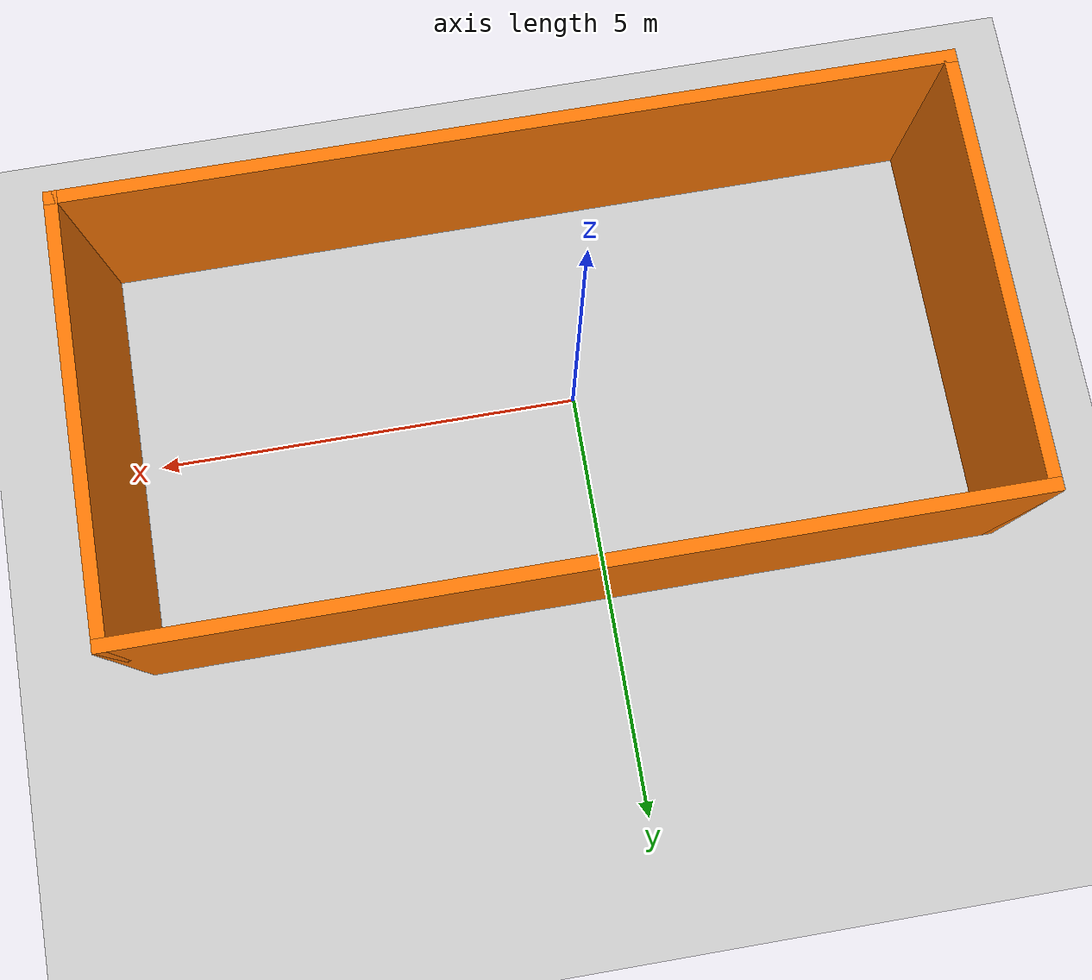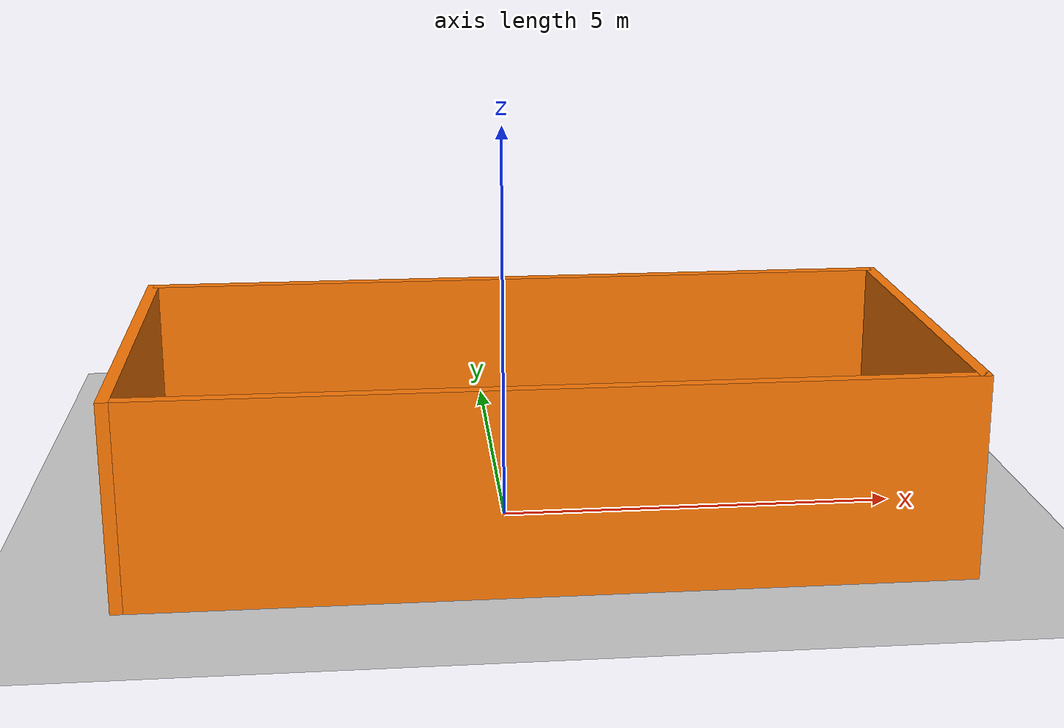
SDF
<sdf version="1.7">
 <world name="default">
  <light name="sun" type="directional">
   <pose>0 0 10 0 -0 0</pose>
   <diffuse>0.8 0.8 0.8 1</diffuse>
   <specular>0.2 0.2 0.2 1</specular>
   <attenuation>
    <range>1000</range>
    <constant>0.9</constant>
    <linear>0.01</linear>
    <quadratic>0.001</quadratic>
   </attenuation>
   <direction>-0.5 0.1 -0.9</direction>
   <spot><inner_angle>0</inner_angle><outer_angle>0</outer_angle><falloff>0</falloff></spot>
  </light>
  <model name="ground_plane">
   <static>1</static>
   <link name="link">
    <collision name="collision">
     <geometry><plane><normal>0 0 1</normal><size>100 100</size></plane></geometry>
     <surface><friction><ode><mu>100</mu><mu2>50</mu2></ode></friction></surface>
    </collision>
    <visual name="visual">
     <cast_shadows>0</cast_shadows>
     <geometry><plane><normal>0 0 1</normal><size>100 100</size></plane></geometry>
     <material>
      <script><uri>file://media/materials/scripts/gazebo.material</uri><name>Gazebo/Grey</name></script>
     </material>
    </visual>
   </link>
  </model>
  <gravity>0 0 -9.8</gravity>
  <magnetic_field>6e-06 2.3e-05 -4.2e-05</magnetic_field>
  <atmosphere type="adiabatic"/>
  <physics type="ode">
   <max_step_size>0.001</max_step_size>
   <real_time_factor>1</real_time_factor>
   <real_time_update_rate>1000</real_time_update_rate>
  </physics>
  <scene><ambient>0.4 0.4 0.4 1</ambient><background>0.7 0.7 0.7 1</background><shadows>1</shadows></scene>
  <spherical_coordinates>
   <surface_model>EARTH_WGS84</surface_model>
   <latitude_deg>0</latitude_deg>
   <longitude_deg>0</longitude_deg>
   <elevation>0</elevation>
   <heading_deg>0</heading_deg>
  </spherical_coordinates>
  <model name="rectangle10x5">
   <pose>0.380934 -0.062957 0 0 -0 0</pose>
   <link name="Wall_11">
    <collision name="Wall_11_Collision">
     <geometry><box><size>10 0.15 2.5</size></box></geometry>
     <pose>0 0 1.25 0 -0 0</pose>
    </collision>
    <visual name="Wall_11_Visual">
     <pose>0 0 1.25 0 -0 0</pose>
     <geometry><box><size>10 0.15 2.5</size></box></geometry>
     <material>
      <script><uri>file://media/materials/scripts/gazebo.material</uri><name>Gazebo/Grey</name></script>
      <ambient>0.996078 0.47451 0.0196078 1</ambient>
     </material>
     <meta><layer>0</layer></meta>
    </visual>
    <pose>-0 2.425 0 0 -0 0</pose>
   </link>
   <link name="Wall_14">
    <collision name="Wall_14_Collision">
     <geometry><box><size>5 0.15 2.5</size></box></geometry>
     <pose>0 0 1.25 0 -0 0</pose>
    </collision>
    <visual name="Wall_14_Visual">
     <pose>0 0 1.25 0 -0 0</pose>
     <geometry><box><size>5 0.15 2.5</size></box></geometry>
     <material>
      <script><uri>file://media/materials/scripts/gazebo.material</uri><name>Gazebo/Grey</name></script>
      <ambient>0.996078 0.47451 0.0196078 1</ambient>
     </material>
     <meta><layer>0</layer></meta>
    </visual>
    <pose>4.925 -0 0 0 -0 -1.5708</pose>
   </link>
   <link name="Wall_15">
    <collision name="Wall_15_Collision">
     <geometry><box><size>10 0.15 2.5</size></box></geometry>
     <pose>0 0 1.25 0 -0 0</pose>
    </collision>
    <visual name="Wall_15_Visual">
     <pose>0 0 1.25 0 -0 0</pose>
     <geometry><box><size>10 0.15 2.5</size></box></geometry>
     <material>
      <script><uri>file://media/materials/scripts/gazebo.material</uri><name>Gazebo/Grey</name></script>
      <ambient>0.996078 0.47451 0.0196078 1</ambient>
     </material>
     <meta><layer>0</layer></meta>
    </visual>
    <pose>-0 -2.425 0 0 -0 3.14159</pose>
   </link>
   <link name="Wall_7">
    <collision name="Wall_7_Collision">
     <geometry><box><size>5 0.15 2.5</size></box></geometry>
     <pose>0 0 1.25 0 -0 0</pose>
    </collision>
    <visual name="Wall_7_Visual">
     <pose>0 0 1.25 0 -0 0</pose>
     <geometry><box><size>5 0.15 2.5</size></box></geometry>
     <material>
      <script><uri>file://media/materials/scripts/gazebo.material</uri><name>Gazebo/Grey</name></script>
      <ambient>0.996078 0.47451 0.0196078 1</ambient>
     </material>
     <meta><layer>0</layer></meta>
    </visual>
    <pose>-4.925 -0 0 0 -0 -1.5708</pose>
   </link>
   <static>1</static>
  </model>
  <light name="user_point_light_0" type="point">
   <pose>0.013896 -0.013443 1 0 -0 0</pose>
   <diffuse>0.5 0.5 0.5 1</diffuse>
   <specular>0.1 0.1 0.1 1</specular>
   <attenuation>
    <range>20</range>
    <constant>0.5</constant>
    <linear>0.01</linear>
    <quadratic>0.001</quadratic>
   </attenuation>
   <cast_shadows>0</cast_shadows>
   <direction>0 0 -1</direction>
  </light>
 </world>
</sdf>
